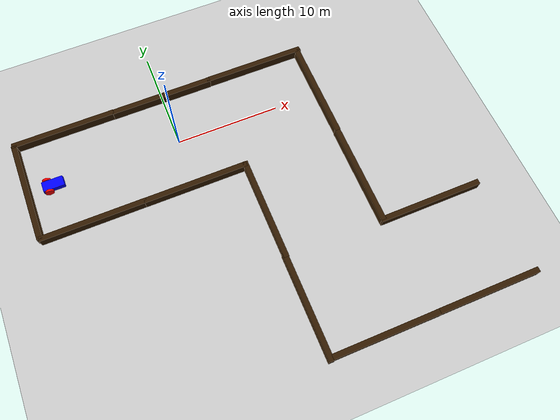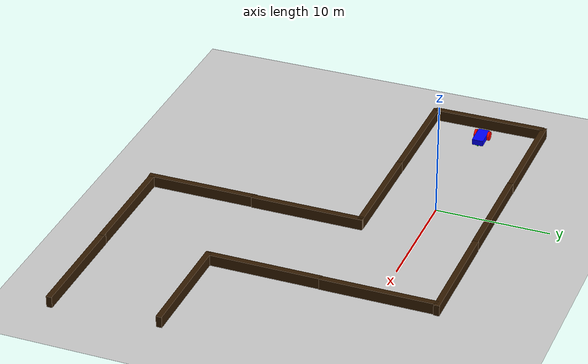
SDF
<!--
/**
** Datei: simulation.sdf
** Beschreibung: Gazebo Simulations Welt
** Autor: Chukwunonso Bob-Anyeji
** Date: 18.07.2025
 */
-->

<sdf version='1.10'>
  <world name='depthcam_world'>
    <plugin name='gz::sim::systems::Physics' filename='gz-sim-physics-system'>
      <max_step_size>0.001</max_step_size>
      <real_time_factor>1</real_time_factor>
      <real_time_update_rate>1000</real_time_update_rate>
    </plugin>
    <plugin name='gz::sim::systems::UserCommands' filename='gz-sim-user-commands-system'/>
    <plugin name='gz::sim::systems::SceneBroadcaster' filename='gz-sim-scene-broadcaster-system'/>
    <plugin name='gz::sim::systems::Imu' filename='gz-sim-imu-system'/>
    <plugin name='gz::sim::systems::Contact' filename='gz-sim-contact-system'/>
    <plugin name='gz::sim::systems::Sensors' filename='gz-sim-sensors-system'>
      <render_engine>ogre2</render_engine>
    </plugin>
    <plugin name='gz::sim::systems::TriggeredPublisher' filename='gz-sim-triggered-publisher-system'>
      <input type='gz.msgs.Int32' topic='/keyboard/keypress'>
        <match field='data'>16777235</match>
      </input>
      <output type='gz.msgs.Twist' topic='/cmd_vel'>linear: {x: 0.5}, angular: {z: 0.0}</output>
    </plugin>
    <plugin name='gz::sim::systems::TriggeredPublisher' filename='gz-sim-triggered-publisher-system'>
      <input type='gz.msgs.Int32' topic='/keyboard/keypress'>
        <match field='data'>16777237</match>
      </input>
      <output type='gz.msgs.Twist' topic='/cmd_vel'>linear: {x: -0.5}, angular: {z: 0.0}</output>
    </plugin>
    <plugin name='gz::sim::systems::TriggeredPublisher' filename='gz-sim-triggered-publisher-system'>
      <input type='gz.msgs.Int32' topic='/keyboard/keypress'>
        <match field='data'>16777236</match>
      </input>
      <output type='gz.msgs.Twist' topic='/cmd_vel'>linear: {x: 0.0}, angular: {z: -0.5}</output>
    </plugin>
    <plugin name='gz::sim::systems::TriggeredPublisher' filename='gz-sim-triggered-publisher-system'>
      <input type='gz.msgs.Int32' topic='/keyboard/keypress'>
        <match field='data'>16777234</match>
      </input>
      <output type='gz.msgs.Twist' topic='/cmd_vel'>linear: {x: 0.0}, angular: {z: 0.5}</output>
    </plugin>
    <plugin name='gz::sim::systems::TriggeredPublisher' filename='gz-sim-triggered-publisher-system'>
      <input type='gz.msgs.Boolean' topic='/wall/touched'>
        <match>data: true</match>
      </input>
      <output type='gz.msgs.Twist' topic='/cmd_vel'>linear: {x: 0.0}, angular: {z: 0.0}</output>
    </plugin>
    <physics name='1ms' type='ignored'>
      <max_step_size>0.001</max_step_size>
      <real_time_factor>1</real_time_factor>
      <real_time_update_rate>1000</real_time_update_rate>
    </physics>
    <gravity>0 0 -9.8000000000000007</gravity>
    <magnetic_field>5.5644999999999998e-06 2.2875799999999999e-05 -4.2388400000000002e-05</magnetic_field>
    <atmosphere type='adiabatic'/>
    <scene>
      <ambient>0.400000006 0.400000006 0.400000006 1</ambient>
      <background>0.699999988 0.699999988 0.699999988 1</background>
      <shadows>true</shadows>
    </scene>
    <model name='ground_plane'>
      <static>true</static>
      <link name='link'>
        <collision name='collision'>
          <geometry>
            <plane>
              <normal>0 0 1</normal>
              <size>1 1</size>
            </plane>
          </geometry>
          <surface>
            <friction>
              <ode/>
            </friction>
            <bounce/>
            <contact/>
          </surface>
        </collision>
        <visual name='visual'>
          <geometry>
            <plane>
              <normal>0 0 1</normal>
              <size>100 100</size>
            </plane>
          </geometry>
          <material>
            <ambient>0.800000012 0.800000012 0.800000012 1</ambient>
            <diffuse>0.800000012 0.800000012 0.800000012 1</diffuse>
            <specular>0.800000012 0.800000012 0.800000012 1</specular>
          </material>
        </visual>
        <pose>0 0 0 0 0 0</pose>
        <inertial>
          <pose>0 0 0 0 0 0</pose>
          <mass>1</mass>
          <inertia>
            <ixx>1</ixx>
            <ixy>0</ixy>
            <ixz>0</ixz>
            <iyy>1</iyy>
            <iyz>0</iyz>
            <izz>1</izz>
          </inertia>
        </inertial>
        <enable_wind>false</enable_wind>
      </link>
      <pose>0 0 0 0 0 0</pose>
      <self_collide>false</self_collide>
    </model>
    <model name='wall_front'>
      <static>true</static>
      <pose>14.409177780151367 0 0.5 0 0 0</pose>
      <link name='box'>
        <visual name='visual'>
          <geometry>
            <box>
              <size>0.5 10 1</size>
            </box>
          </geometry>
          <material>
            <ambient>0.202999994 0.108999997 0.00700000022 1</ambient>
            <diffuse>0.202999994 0.108999997 0.00700000022 1</diffuse>
            <specular>0.202999994 0.108999997 0.00700000022 1</specular>
          </material>
        </visual>
        <collision name='collision'>
          <geometry>
            <box>
              <size>0.5 10 1</size>
            </box>
          </geometry>
          <surface>
            <friction>
              <ode/>
            </friction>
            <bounce/>
            <contact/>
          </surface>
        </collision>
        <sensor name='sensor_contact' type='contact'>
          <contact>
            <collision>collision</collision>
            <topic>__default_topic__</topic>
          </contact>
          <pose>0 0 0 0 0 0</pose>
        </sensor>
        <pose>0 0 0 0 0 0</pose>
        <inertial>
          <pose>0 0 0 0 0 0</pose>
          <mass>1</mass>
          <inertia>
            <ixx>1</ixx>
            <ixy>0</ixy>
            <ixz>0</ixz>
            <iyy>1</iyy>
            <iyz>0</iyz>
            <izz>1</izz>
          </inertia>
        </inertial>
        <enable_wind>false</enable_wind>
      </link>
      <plugin name='gz::sim::systems::TouchPlugin' filename='gz-sim-touchplugin-system'>
        <target>vehicle_blue</target>
        <namespace>wall</namespace>
        <time>0.001</time>
        <enabled>true</enabled>
      </plugin>
      <self_collide>false</self_collide>
    </model>
    <model name='wall_rear'>
      <static>true</static>
      <pose>-14.708452224731445 0 0.5 0 0 0</pose>
      <link name='box'>
        <visual name='visual'>
          <geometry>
            <box>
              <size>0.5 10 1</size>
            </box>
          </geometry>
          <material>
            <ambient>0.202999994 0.108999997 0.00700000022 1</ambient>
            <diffuse>0.202999994 0.108999997 0.00700000022 1</diffuse>
            <specular>0.202999994 0.108999997 0.00700000022 1</specular>
          </material>
        </visual>
        <collision name='collision'>
          <geometry>
            <box>
              <size>0.5 10 1</size>
            </box>
          </geometry>
          <surface>
            <friction>
              <ode/>
            </friction>
            <bounce/>
            <contact/>
          </surface>
        </collision>
        <sensor name='sensor_contact' type='contact'>
          <contact>
            <collision>collision</collision>
            <topic>__default_topic__</topic>
          </contact>
          <pose>0 0 0 0 0 0</pose>
        </sensor>
        <pose>0 0 0 0 0 0</pose>
        <inertial>
          <pose>0 0 0 0 0 0</pose>
          <mass>1</mass>
          <inertia>
            <ixx>1</ixx>
            <ixy>0</ixy>
            <ixz>0</ixz>
            <iyy>1</iyy>
            <iyz>0</iyz>
            <izz>1</izz>
          </inertia>
        </inertial>
        <enable_wind>false</enable_wind>
      </link>
      <plugin name='gz::sim::systems::TouchPlugin' filename='gz-sim-touchplugin-system'>
        <target>vehicle_blue</target>
        <namespace>wall</namespace>
        <time>0.001</time>
        <enabled>true</enabled>
      </plugin>
      <self_collide>false</self_collide>
    </model>
    <model name='wall_left'>
      <static>true</static>
      <pose>0 5 0.5 0 0 1.5700000000000001</pose>
      <link name='box'>
        <visual name='visual'>
          <geometry>
            <box>
              <size>0.5 10 1</size>
            </box>
          </geometry>
          <material>
            <ambient>0.202999994 0.108999997 0.00700000022 1</ambient>
            <diffuse>0.202999994 0.108999997 0.00700000022 1</diffuse>
            <specular>0.202999994 0.108999997 0.00700000022 1</specular>
          </material>
        </visual>
        <collision name='collision'>
          <geometry>
            <box>
              <size>0.5 10 1</size>
            </box>
          </geometry>
          <surface>
            <friction>
              <ode/>
            </friction>
            <bounce/>
            <contact/>
          </surface>
        </collision>
        <sensor name='sensor_contact' type='contact'>
          <contact>
            <collision>collision</collision>
            <topic>__default_topic__</topic>
          </contact>
          <pose>0 0 0 0 0 0</pose>
        </sensor>
        <pose>0 0 0 0 0 0</pose>
        <inertial>
          <pose>0 0 0 0 0 0</pose>
          <mass>1</mass>
          <inertia>
            <ixx>1</ixx>
            <ixy>0</ixy>
            <ixz>0</ixz>
            <iyy>1</iyy>
            <iyz>0</iyz>
            <izz>1</izz>
          </inertia>
        </inertial>
        <enable_wind>false</enable_wind>
      </link>
      <plugin name='gz::sim::systems::TouchPlugin' filename='gz-sim-touchplugin-system'>
        <target>vehicle_blue</target>
        <namespace>wall</namespace>
        <time>0.001</time>
        <enabled>true</enabled>
      </plugin>
      <self_collide>false</self_collide>
    </model>
    <model name='wall_right'>
      <static>true</static>
      <pose>0 -5 0.5 0 0 1.5700000000000001</pose>
      <link name='box'>
        <visual name='visual'>
          <geometry>
            <box>
              <size>0.5 10 1</size>
            </box>
          </geometry>
          <material>
            <ambient>0.202999994 0.108999997 0.00700000022 1</ambient>
            <diffuse>0.202999994 0.108999997 0.00700000022 1</diffuse>
            <specular>0.202999994 0.108999997 0.00700000022 1</specular>
          </material>
        </visual>
        <collision name='collision'>
          <geometry>
            <box>
              <size>0.5 10 1</size>
            </box>
          </geometry>
          <surface>
            <friction>
              <ode/>
            </friction>
            <bounce/>
            <contact/>
          </surface>
        </collision>
        <sensor name='sensor_contact' type='contact'>
          <contact>
            <collision>collision</collision>
            <topic>__default_topic__</topic>
          </contact>
          <pose>0 0 0 0 0 0</pose>
        </sensor>
        <pose>0 0 0 0 0 0</pose>
        <inertial>
          <pose>0 0 0 0 0 0</pose>
          <mass>1</mass>
          <inertia>
            <ixx>1</ixx>
            <ixy>0</ixy>
            <ixz>0</ixz>
            <iyy>1</iyy>
            <iyz>0</iyz>
            <izz>1</izz>
          </inertia>
        </inertial>
        <enable_wind>false</enable_wind>
      </link>
      <plugin name='gz::sim::systems::TouchPlugin' filename='gz-sim-touchplugin-system'>
        <target>vehicle_blue</target>
        <namespace>wall</namespace>
        <time>0.001</time>
        <enabled>true</enabled>
      </plugin>
      <self_collide>false</self_collide>
    </model>
    <model name='vehicle_blue' canonical_link='chassis'>
      <pose>-12.802295684814453 0 0 0 0 0</pose>
      <link name='chassis'>
        <pose>0.5 0 0.40000000000000002 0 0 0</pose>
        <inertial>
          <mass>1.14395</mass>
          <inertia>
            <ixx>0.095328999999999997</ixx>
            <ixy>0</ixy>
            <ixz>0</ixz>
            <iyy>0.38131700000000002</iyy>
            <iyz>0</iyz>
            <izz>0.47664600000000001</izz>
          </inertia>
          <pose>0 0 0 0 0 0</pose>
        </inertial>
        <visual name='visual'>
          <geometry>
            <box>
              <size>2 1 0.5</size>
            </box>
          </geometry>
          <material>
            <ambient>0 0 1 1</ambient>
            <diffuse>0 0 1 1</diffuse>
            <specular>0 0 1 1</specular>
          </material>
        </visual>
        <collision name='collision'>
          <geometry>
            <box>
              <size>2 1 0.5</size>
            </box>
          </geometry>
          <surface>
            <friction>
              <ode/>
            </friction>
            <bounce/>
            <contact/>
          </surface>
        </collision>
        <sensor name='imu_sensor' type='imu'>
          <pose>0 0 0 0 0 0</pose>
          <topic>imu</topic>
          <update_rate>1</update_rate>
          <enable_metrics>false</enable_metrics>
          <imu>
            <orientation_reference_frame>
              <localization>CUSTOM</localization>
              <custom_rpy>0 0 0</custom_rpy>
              <grav_dir_x>1 0 0</grav_dir_x>
            </orientation_reference_frame>
            <angular_velocity>
              <x>
                <noise type='none'>
                  <mean>0</mean>
                  <stddev>0</stddev>
                  <bias_mean>0</bias_mean>
                  <bias_stddev>0</bias_stddev>
                  <dynamic_bias_stddev>0</dynamic_bias_stddev>
                  <dynamic_bias_correlation_time>0</dynamic_bias_correlation_time>
                  <precision>0</precision>
                </noise>
              </x>
              <y>
                <noise type='none'>
                  <mean>0</mean>
                  <stddev>0</stddev>
                  <bias_mean>0</bias_mean>
                  <bias_stddev>0</bias_stddev>
                  <dynamic_bias_stddev>0</dynamic_bias_stddev>
                  <dynamic_bias_correlation_time>0</dynamic_bias_correlation_time>
                  <precision>0</precision>
                </noise>
              </y>
              <z>
                <noise type='none'>
                  <mean>0</mean>
                  <stddev>0</stddev>
                  <bias_mean>0</bias_mean>
                  <bias_stddev>0</bias_stddev>
                  <dynamic_bias_stddev>0</dynamic_bias_stddev>
                  <dynamic_bias_correlation_time>0</dynamic_bias_correlation_time>
                  <precision>0</precision>
                </noise>
              </z>
            </angular_velocity>
            <linear_acceleration>
              <x>
                <noise type='none'>
                  <mean>0</mean>
                  <stddev>0</stddev>
                  <bias_mean>0</bias_mean>
                  <bias_stddev>0</bias_stddev>
                  <dynamic_bias_stddev>0</dynamic_bias_stddev>
                  <dynamic_bias_correlation_time>0</dynamic_bias_correlation_time>
                  <precision>0</precision>
                </noise>
              </x>
              <y>
                <noise type='none'>
                  <mean>0</mean>
                  <stddev>0</stddev>
                  <bias_mean>0</bias_mean>
                  <bias_stddev>0</bias_stddev>
                  <dynamic_bias_stddev>0</dynamic_bias_stddev>
                  <dynamic_bias_correlation_time>0</dynamic_bias_correlation_time>
                  <precision>0</precision>
                </noise>
              </y>
              <z>
                <noise type='none'>
                  <mean>0</mean>
                  <stddev>0</stddev>
                  <bias_mean>0</bias_mean>
                  <bias_stddev>0</bias_stddev>
                  <dynamic_bias_stddev>0</dynamic_bias_stddev>
                  <dynamic_bias_correlation_time>0</dynamic_bias_correlation_time>
                  <precision>0</precision>
                </noise>
              </z>
            </linear_acceleration>
            <enable_orientation>true</enable_orientation>
          </imu>
        </sensor>
        <sensor name='gpu_lidar' type='gpu_lidar'>
          <pose>0.80000000000000004 0 0.5 0 0 0</pose>
          <topic>lidar</topic>
          <update_rate>10</update_rate>
          <enable_metrics>false</enable_metrics>
          <lidar>
            <scan>
              <horizontal>
                <samples>640</samples>
                <resolution>1</resolution>
                <min_angle>-1.396263</min_angle>
                <max_angle>1.396263</max_angle>
              </horizontal>
              <vertical>
                <samples>16</samples>
                <min_angle>-0.261799</min_angle>
                <max_angle>0.261799</max_angle>
                <resolution>1</resolution>
              </vertical>
            </scan>
            <range>
              <min>0.080000000000000002</min>
              <max>10</max>
              <resolution>0.01</resolution>
            </range>
            <noise>
              <type>none</type>
              <mean>0</mean>
              <stddev>0</stddev>
            </noise>
            <visibility_mask>4294967295</visibility_mask>
          </lidar>
        </sensor>
        <sensor name='depth_camera' type='depth_camera'>
          <pose>0.80000000000000004 0 0.5 0 0 0</pose>
          <topic>depthcam</topic>
          <update_rate>10</update_rate>
          <enable_metrics>false</enable_metrics>
          <camera name='__default__'>
            <pose>0 0 0 0 0 0</pose>
            <horizontal_fov>1.5700000000000001</horizontal_fov>
            <image>
              <width>256</width>
              <height>256</height>
              <format>R_FLOAT32</format>
              <anti_aliasing>4</anti_aliasing>
            </image>
            <camera_info_topic>__default__</camera_info_topic>
            <trigger_topic></trigger_topic>
            <triggered>false</triggered>
            <clip>
              <near>0.10000000000000001</near>
              <far>10</far>
            </clip>
            <save enabled='false'>
              <path>__default__</path>
            </save>
            <visibility_mask>4294967295</visibility_mask>
            <noise>
              <type>none</type>
              <mean>0</mean>
              <stddev>0</stddev>
            </noise>
            <distortion>
              <k1>0</k1>
              <k2>0</k2>
              <k3>0</k3>
              <p1>0</p1>
              <p2>0</p2>
              <center>0.5 0.5</center>
            </distortion>
            <lens>
              <type>stereographic</type>
              <scale_to_hfov>true</scale_to_hfov>
              <cutoff_angle>1.5707963267948966</cutoff_angle>
              <env_texture_size>256</env_texture_size>
            </lens>
            <optical_frame_id></optical_frame_id>
          </camera>
        </sensor>
        <enable_wind>false</enable_wind>
      </link>
      <link name='left_wheel'>
        <pose>0 0.59999999999999998 0.40000000000000002 -1.5706999999999995 0 0</pose>
        <inertial>
          <mass>1</mass>
          <inertia>
            <ixx>0.043333000000000003</ixx>
            <ixy>0</ixy>
            <ixz>0</ixz>
            <iyy>0.043333000000000003</iyy>
            <iyz>0</iyz>
            <izz>0.080000000000000002</izz>
          </inertia>
          <pose>0 0 0 0 0 0</pose>
        </inertial>
        <visual name='visual'>
          <geometry>
            <cylinder>
              <radius>0.40000000000000002</radius>
              <length>0.20000000000000001</length>
            </cylinder>
          </geometry>
          <material>
            <ambient>1 0 0 1</ambient>
            <diffuse>1 0 0 1</diffuse>
            <specular>1 0 0 1</specular>
          </material>
        </visual>
        <collision name='collision'>
          <geometry>
            <cylinder>
              <radius>0.40000000000000002</radius>
              <length>0.20000000000000001</length>
            </cylinder>
          </geometry>
          <surface>
            <friction>
              <ode/>
            </friction>
            <bounce/>
            <contact/>
          </surface>
        </collision>
        <enable_wind>false</enable_wind>
      </link>
      <link name='right_wheel'>
        <pose>0 -0.59999999999999998 0.40000000000000002 -1.5706999999999995 0 0</pose>
        <inertial>
          <mass>1</mass>
          <inertia>
            <ixx>0.043333000000000003</ixx>
            <ixy>0</ixy>
            <ixz>0</ixz>
            <iyy>0.043333000000000003</iyy>
            <iyz>0</iyz>
            <izz>0.080000000000000002</izz>
          </inertia>
          <pose>0 0 0 0 0 0</pose>
        </inertial>
        <visual name='visual'>
          <geometry>
            <cylinder>
              <radius>0.40000000000000002</radius>
              <length>0.20000000000000001</length>
            </cylinder>
          </geometry>
          <material>
            <ambient>1 0 0 1</ambient>
            <diffuse>1 0 0 1</diffuse>
            <specular>1 0 0 1</specular>
          </material>
        </visual>
        <collision name='collision'>
          <geometry>
            <cylinder>
              <radius>0.40000000000000002</radius>
              <length>0.20000000000000001</length>
            </cylinder>
          </geometry>
          <surface>
            <friction>
              <ode/>
            </friction>
            <bounce/>
            <contact/>
          </surface>
        </collision>
        <enable_wind>false</enable_wind>
      </link>
      <frame name='caster_frame' attached_to='chassis'>
        <pose>0.80000000000000004 0 -0.20000000000000001 0 0 0</pose>
      </frame>
      <frame name='lidar_frame' attached_to='chassis'>
        <pose>0.80000000000000004 0 0.5 0 0 0</pose>
      </frame>
      <frame name='depthcam_frame' attached_to='chassis'>
        <pose>0.80000000000000004 0 0.5 0 0 0</pose>
      </frame>
      <link name='caster'>
        <pose>1.3000000000000007 0 0.20000000000000001 0 0 0</pose>
        <inertial>
          <mass>1</mass>
          <inertia>
            <ixx>0.016</ixx>
            <ixy>0</ixy>
            <ixz>0</ixz>
            <iyy>0.016</iyy>
            <iyz>0</iyz>
            <izz>0.016</izz>
          </inertia>
          <pose>0 0 0 0 0 0</pose>
        </inertial>
        <visual name='visual'>
          <geometry>
            <sphere>
              <radius>0.20000000000000001</radius>
            </sphere>
          </geometry>
          <material>
            <ambient>0 1 0 1</ambient>
            <diffuse>0 1 0 1</diffuse>
            <specular>0 1 0 1</specular>
          </material>
        </visual>
        <collision name='collision'>
          <geometry>
            <sphere>
              <radius>0.20000000000000001</radius>
            </sphere>
          </geometry>
          <surface>
            <friction>
              <ode/>
            </friction>
            <bounce/>
            <contact/>
          </surface>
        </collision>
        <enable_wind>false</enable_wind>
      </link>
      <joint name='left_wheel_joint' type='revolute'>
        <pose>0 -2.2204460492503131e-16 0 0 0 0</pose>
        <parent>chassis</parent>
        <child>left_wheel</child>
        <axis>
          <xyz>0 9.6326794747692026e-05 0.99999999536057438</xyz>
          <limit>
            <lower>-1.7976900000000001e+308</lower>
            <upper>1.7976900000000001e+308</upper>
            <effort>inf</effort>
            <velocity>inf</velocity>
            <stiffness>100000000</stiffness>
            <dissipation>1</dissipation>
          </limit>
          <dynamics>
            <spring_reference>0</spring_reference>
            <spring_stiffness>0</spring_stiffness>
            <damping>0</damping>
            <friction>0</friction>
          </dynamics>
        </axis>
      </joint>
      <joint name='right_wheel_joint' type='revolute'>
        <pose>0 1.1102230246251565e-16 -1.1102230246251565e-16 0 0 0</pose>
        <parent>chassis</parent>
        <child>right_wheel</child>
        <axis>
          <xyz>0 9.6326794747692026e-05 0.99999999536057438</xyz>
          <limit>
            <lower>-1.7976900000000001e+308</lower>
            <upper>1.7976900000000001e+308</upper>
            <effort>inf</effort>
            <velocity>inf</velocity>
            <stiffness>100000000</stiffness>
            <dissipation>1</dissipation>
          </limit>
          <dynamics>
            <spring_reference>0</spring_reference>
            <spring_stiffness>0</spring_stiffness>
            <damping>0</damping>
            <friction>0</friction>
          </dynamics>
        </axis>
      </joint>
      <joint name='caster_wheel' type='ball'>
        <parent>chassis</parent>
        <child>caster</child>
        <pose>0 0 0 0 0 0</pose>
      </joint>
      <plugin name='gz::sim::systems::DiffDrive' filename='gz-sim-diff-drive-system'>
        <left_joint>left_wheel_joint</left_joint>
        <right_joint>right_wheel_joint</right_joint>
        <wheel_separation>1.2</wheel_separation>
        <wheel_radius>0.4</wheel_radius>
        <odom_publish_frequency>1</odom_publish_frequency>
        <topic>cmd_vel</topic>
      </plugin>
      <static>false</static>
      <self_collide>false</self_collide>
    </model>
    <model name='wall_right_1'>
      <static>true</static>
      <pose>-9.7897447909377977 -4.9829113119524227 0.5 0 0 1.5700000042340219</pose>
      <link name='box'>
        <visual name='visual'>
          <geometry>
            <box>
              <size>0.5 10 1</size>
            </box>
          </geometry>
          <material>
            <ambient>0.202999994 0.108999997 0.00700000022 1</ambient>
            <diffuse>0.202999994 0.108999997 0.00700000022 1</diffuse>
            <specular>0.202999994 0.108999997 0.00700000022 1</specular>
          </material>
        </visual>
        <collision name='collision'>
          <geometry>
            <box>
              <size>0.5 10 1</size>
            </box>
          </geometry>
          <surface>
            <friction>
              <ode/>
            </friction>
            <bounce/>
            <contact/>
          </surface>
        </collision>
        <sensor name='sensor_contact' type='contact'>
          <contact>
            <collision>collision</collision>
            <topic>__default_topic__</topic>
          </contact>
          <pose>0 0 0 0 0 0</pose>
        </sensor>
        <pose>0 0 0 0 0 0</pose>
        <inertial>
          <pose>0 0 0 0 0 0</pose>
          <mass>1</mass>
          <inertia>
            <ixx>1</ixx>
            <ixy>0</ixy>
            <ixz>0</ixz>
            <iyy>1</iyy>
            <iyz>0</iyz>
            <izz>1</izz>
          </inertia>
        </inertial>
        <enable_wind>false</enable_wind>
      </link>
      <plugin name='gz::sim::systems::TouchPlugin' filename='gz-sim-touchplugin-system'>
        <target>vehicle_blue</target>
        <namespace>wall</namespace>
        <time>0.001</time>
        <enabled>true</enabled>
      </plugin>
      <self_collide>false</self_collide>
    </model>
    <model name='wall_left_1'>
      <static>true</static>
      <pose>-9.8830463539382407 5.0339531311320922 0.5 0 0 1.5700000042340219</pose>
      <link name='box'>
        <visual name='visual'>
          <geometry>
            <box>
              <size>0.5 10 1</size>
            </box>
          </geometry>
          <material>
            <ambient>0.202999994 0.108999997 0.00700000022 1</ambient>
            <diffuse>0.202999994 0.108999997 0.00700000022 1</diffuse>
            <specular>0.202999994 0.108999997 0.00700000022 1</specular>
          </material>
        </visual>
        <collision name='collision'>
          <geometry>
            <box>
              <size>0.5 10 1</size>
            </box>
          </geometry>
          <surface>
            <friction>
              <ode/>
            </friction>
            <bounce/>
            <contact/>
          </surface>
        </collision>
        <sensor name='sensor_contact' type='contact'>
          <contact>
            <collision>collision</collision>
            <topic>__default_topic__</topic>
          </contact>
          <pose>0 0 0 0 0 0</pose>
        </sensor>
        <pose>0 0 0 0 0 0</pose>
        <inertial>
          <pose>0 0 0 0 0 0</pose>
          <mass>1</mass>
          <inertia>
            <ixx>1</ixx>
            <ixy>0</ixy>
            <ixz>0</ixz>
            <iyy>1</iyy>
            <iyz>0</iyz>
            <izz>1</izz>
          </inertia>
        </inertial>
        <enable_wind>false</enable_wind>
      </link>
      <plugin name='gz::sim::systems::TouchPlugin' filename='gz-sim-touchplugin-system'>
        <target>vehicle_blue</target>
        <namespace>wall</namespace>
        <time>0.001</time>
        <enabled>true</enabled>
      </plugin>
      <self_collide>false</self_collide>
    </model>
    <model name='wall_front_1'>
      <static>true</static>
      <pose>4.9255152277629835 -9.7771890892937847 0.5 0 0 0</pose>
      <link name='box'>
        <visual name='visual'>
          <geometry>
            <box>
              <size>0.5 10 1</size>
            </box>
          </geometry>
          <material>
            <ambient>0.202999994 0.108999997 0.00700000022 1</ambient>
            <diffuse>0.202999994 0.108999997 0.00700000022 1</diffuse>
            <specular>0.202999994 0.108999997 0.00700000022 1</specular>
          </material>
        </visual>
        <collision name='collision'>
          <geometry>
            <box>
              <size>0.5 10 1</size>
            </box>
          </geometry>
          <surface>
            <friction>
              <ode/>
            </friction>
            <bounce/>
            <contact/>
          </surface>
        </collision>
        <sensor name='sensor_contact' type='contact'>
          <contact>
            <collision>collision</collision>
            <topic>__default_topic__</topic>
          </contact>
          <pose>0 0 0 0 0 0</pose>
        </sensor>
        <pose>0 0 0 0 0 0</pose>
        <inertial>
          <pose>0 0 0 0 0 0</pose>
          <mass>1</mass>
          <inertia>
            <ixx>1</ixx>
            <ixy>0</ixy>
            <ixz>0</ixz>
            <iyy>1</iyy>
            <iyz>0</iyz>
            <izz>1</izz>
          </inertia>
        </inertial>
        <enable_wind>false</enable_wind>
      </link>
      <plugin name='gz::sim::systems::TouchPlugin' filename='gz-sim-touchplugin-system'>
        <target>vehicle_blue</target>
        <namespace>wall</namespace>
        <time>0.001</time>
        <enabled>true</enabled>
      </plugin>
      <self_collide>false</self_collide>
    </model>
    <model name='wall_left_2'>
      <static>true</static>
      <pose>9.7594623402073815 5.0149079140967618 0.5 0 0 1.5700000042340219</pose>
      <link name='box'>
        <visual name='visual'>
          <geometry>
            <box>
              <size>0.5 10 1</size>
            </box>
          </geometry>
          <material>
            <ambient>0.202999994 0.108999997 0.00700000022 1</ambient>
            <diffuse>0.202999994 0.108999997 0.00700000022 1</diffuse>
            <specular>0.202999994 0.108999997 0.00700000022 1</specular>
          </material>
        </visual>
        <collision name='collision'>
          <geometry>
            <box>
              <size>0.5 10 1</size>
            </box>
          </geometry>
          <surface>
            <friction>
              <ode/>
            </friction>
            <bounce/>
            <contact/>
          </surface>
        </collision>
        <sensor name='sensor_contact' type='contact'>
          <contact>
            <collision>collision</collision>
            <topic>__default_topic__</topic>
          </contact>
          <pose>0 0 0 0 0 0</pose>
        </sensor>
        <pose>0 0 0 0 0 0</pose>
        <inertial>
          <pose>0 0 0 0 0 0</pose>
          <mass>1</mass>
          <inertia>
            <ixx>1</ixx>
            <ixy>0</ixy>
            <ixz>0</ixz>
            <iyy>1</iyy>
            <iyz>0</iyz>
            <izz>1</izz>
          </inertia>
        </inertial>
        <enable_wind>false</enable_wind>
      </link>
      <plugin name='gz::sim::systems::TouchPlugin' filename='gz-sim-touchplugin-system'>
        <target>vehicle_blue</target>
        <namespace>wall</namespace>
        <time>0.001</time>
        <enabled>true</enabled>
      </plugin>
      <self_collide>false</self_collide>
    </model>
    <model name='wall_front_2'>
      <static>true</static>
      <pose>14.372620428436473 -9.8585782611962625 0.5 0 0 0</pose>
      <link name='box'>
        <visual name='visual'>
          <geometry>
            <box>
              <size>0.5 10 1</size>
            </box>
          </geometry>
          <material>
            <ambient>0.202999994 0.108999997 0.00700000022 1</ambient>
            <diffuse>0.202999994 0.108999997 0.00700000022 1</diffuse>
            <specular>0.202999994 0.108999997 0.00700000022 1</specular>
          </material>
        </visual>
        <collision name='collision'>
          <geometry>
            <box>
              <size>0.5 10 1</size>
            </box>
          </geometry>
          <surface>
            <friction>
              <ode/>
            </friction>
            <bounce/>
            <contact/>
          </surface>
        </collision>
        <sensor name='sensor_contact' type='contact'>
          <contact>
            <collision>collision</collision>
            <topic>__default_topic__</topic>
          </contact>
          <pose>0 0 0 0 0 0</pose>
        </sensor>
        <pose>0 0 0 0 0 0</pose>
        <inertial>
          <pose>0 0 0 0 0 0</pose>
          <mass>1</mass>
          <inertia>
            <ixx>1</ixx>
            <ixy>0</ixy>
            <ixz>0</ixz>
            <iyy>1</iyy>
            <iyz>0</iyz>
            <izz>1</izz>
          </inertia>
        </inertial>
        <enable_wind>false</enable_wind>
      </link>
      <plugin name='gz::sim::systems::TouchPlugin' filename='gz-sim-touchplugin-system'>
        <target>vehicle_blue</target>
        <namespace>wall</namespace>
        <time>0.001</time>
        <enabled>true</enabled>
      </plugin>
      <self_collide>false</self_collide>
    </model>
    <model name='wall_front_1_1'>
      <static>true</static>
      <pose>4.8776271346391873 -19.366844868390189 0.5 0 0 0</pose>
      <link name='box'>
        <visual name='visual'>
          <geometry>
            <box>
              <size>0.5 10 1</size>
            </box>
          </geometry>
          <material>
            <ambient>0.202999994 0.108999997 0.00700000022 1</ambient>
            <diffuse>0.202999994 0.108999997 0.00700000022 1</diffuse>
            <specular>0.202999994 0.108999997 0.00700000022 1</specular>
          </material>
        </visual>
        <collision name='collision'>
          <geometry>
            <box>
              <size>0.5 10 1</size>
            </box>
          </geometry>
          <surface>
            <friction>
              <ode/>
            </friction>
            <bounce/>
            <contact/>
          </surface>
        </collision>
        <sensor name='sensor_contact' type='contact'>
          <contact>
            <collision>collision</collision>
            <topic>__default_topic__</topic>
          </contact>
          <pose>0 0 0 0 0 0</pose>
        </sensor>
        <pose>0 0 0 0 0 0</pose>
        <inertial>
          <pose>0 0 0 0 0 0</pose>
          <mass>1</mass>
          <inertia>
            <ixx>1</ixx>
            <ixy>0</ixy>
            <ixz>0</ixz>
            <iyy>1</iyy>
            <iyz>0</iyz>
            <izz>1</izz>
          </inertia>
        </inertial>
        <enable_wind>false</enable_wind>
      </link>
      <plugin name='gz::sim::systems::TouchPlugin' filename='gz-sim-touchplugin-system'>
        <target>vehicle_blue</target>
        <namespace>wall</namespace>
        <time>0.001</time>
        <enabled>true</enabled>
      </plugin>
      <self_collide>false</self_collide>
    </model>
    <model name='wall_right_2'>
      <static>true</static>
      <pose>10.052326876467287 -24.075608157347279 0.5 0 0 1.5700000042340219</pose>
      <link name='box'>
        <visual name='visual'>
          <geometry>
            <box>
              <size>0.5 10 1</size>
            </box>
          </geometry>
          <material>
            <ambient>0.202999994 0.108999997 0.00700000022 1</ambient>
            <diffuse>0.202999994 0.108999997 0.00700000022 1</diffuse>
            <specular>0.202999994 0.108999997 0.00700000022 1</specular>
          </material>
        </visual>
        <collision name='collision'>
          <geometry>
            <box>
              <size>0.5 10 1</size>
            </box>
          </geometry>
          <surface>
            <friction>
              <ode/>
            </friction>
            <bounce/>
            <contact/>
          </surface>
        </collision>
        <sensor name='sensor_contact' type='contact'>
          <contact>
            <collision>collision</collision>
            <topic>__default_topic__</topic>
          </contact>
          <pose>0 0 0 0 0 0</pose>
        </sensor>
        <pose>0 0 0 0 0 0</pose>
        <inertial>
          <pose>0 0 0 0 0 0</pose>
          <mass>1</mass>
          <inertia>
            <ixx>1</ixx>
            <ixy>0</ixy>
            <ixz>0</ixz>
            <iyy>1</iyy>
            <iyz>0</iyz>
            <izz>1</izz>
          </inertia>
        </inertial>
        <enable_wind>false</enable_wind>
      </link>
      <plugin name='gz::sim::systems::TouchPlugin' filename='gz-sim-touchplugin-system'>
        <target>vehicle_blue</target>
        <namespace>wall</namespace>
        <time>0.001</time>
        <enabled>true</enabled>
      </plugin>
      <self_collide>false</self_collide>
    </model>
    <model name='wall_left_3'>
      <static>true</static>
      <pose>19.135738885915249 -14.794105674147184 0.5 0 0 1.5700000042340219</pose>
      <link name='box'>
        <visual name='visual'>
          <geometry>
            <box>
              <size>0.5 10 1</size>
            </box>
          </geometry>
          <material>
            <ambient>0.202999994 0.108999997 0.00700000022 1</ambient>
            <diffuse>0.202999994 0.108999997 0.00700000022 1</diffuse>
            <specular>0.202999994 0.108999997 0.00700000022 1</specular>
          </material>
        </visual>
        <collision name='collision'>
          <geometry>
            <box>
              <size>0.5 10 1</size>
            </box>
          </geometry>
          <surface>
            <friction>
              <ode/>
            </friction>
            <bounce/>
            <contact/>
          </surface>
        </collision>
        <sensor name='sensor_contact' type='contact'>
          <contact>
            <collision>collision</collision>
            <topic>__default_topic__</topic>
          </contact>
          <pose>0 0 0 0 0 0</pose>
        </sensor>
        <pose>0 0 0 0 0 0</pose>
        <inertial>
          <pose>0 0 0 0 0 0</pose>
          <mass>1</mass>
          <inertia>
            <ixx>1</ixx>
            <ixy>0</ixy>
            <ixz>0</ixz>
            <iyy>1</iyy>
            <iyz>0</iyz>
            <izz>1</izz>
          </inertia>
        </inertial>
        <enable_wind>false</enable_wind>
      </link>
      <plugin name='gz::sim::systems::TouchPlugin' filename='gz-sim-touchplugin-system'>
        <target>vehicle_blue</target>
        <namespace>wall</namespace>
        <time>0.001</time>
        <enabled>true</enabled>
      </plugin>
      <self_collide>false</self_collide>
    </model>
    <model name='wall_right_3'>
      <static>true</static>
      <pose>19.765586236342187 -24.074494413210669 0.5 0 0 1.5700000042340219</pose>
      <link name='box'>
        <visual name='visual'>
          <geometry>
            <box>
              <size>0.5 10 1</size>
            </box>
          </geometry>
          <material>
            <ambient>0.202999994 0.108999997 0.00700000022 1</ambient>
            <diffuse>0.202999994 0.108999997 0.00700000022 1</diffuse>
            <specular>0.202999994 0.108999997 0.00700000022 1</specular>
          </material>
        </visual>
        <collision name='collision'>
          <geometry>
            <box>
              <size>0.5 10 1</size>
            </box>
          </geometry>
          <surface>
            <friction>
              <ode/>
            </friction>
            <bounce/>
            <contact/>
          </surface>
        </collision>
        <sensor name='sensor_contact' type='contact'>
          <contact>
            <collision>collision</collision>
            <topic>__default_topic__</topic>
          </contact>
          <pose>0 0 0 0 0 0</pose>
        </sensor>
        <pose>0 0 0 0 0 0</pose>
        <inertial>
          <pose>0 0 0 0 0 0</pose>
          <mass>1</mass>
          <inertia>
            <ixx>1</ixx>
            <ixy>0</ixy>
            <ixz>0</ixz>
            <iyy>1</iyy>
            <iyz>0</iyz>
            <izz>1</izz>
          </inertia>
        </inertial>
        <enable_wind>false</enable_wind>
      </link>
      <plugin name='gz::sim::systems::TouchPlugin' filename='gz-sim-touchplugin-system'>
        <target>vehicle_blue</target>
        <namespace>wall</namespace>
        <time>0.001</time>
        <enabled>true</enabled>
      </plugin>
      <self_collide>false</self_collide>
    </model>
    <light name='sun' type='directional'>
      <pose>0 0 10 0 0 0</pose>
      <cast_shadows>true</cast_shadows>
      <intensity>1</intensity>
      <direction>-0.5 0.10000000000000001 -0.90000000000000002</direction>
      <diffuse>0.800000012 0.800000012 0.800000012 1</diffuse>
      <specular>0.200000003 0.200000003 0.200000003 1</specular>
      <attenuation>
        <range>1000</range>
        <linear>0.01</linear>
        <constant>0.90000000000000002</constant>
        <quadratic>0.001</quadratic>
      </attenuation>
      <spot>
        <inner_angle>0</inner_angle>
        <outer_angle>0</outer_angle>
        <falloff>0</falloff>
      </spot>
    </light>
  </world>
</sdf>
